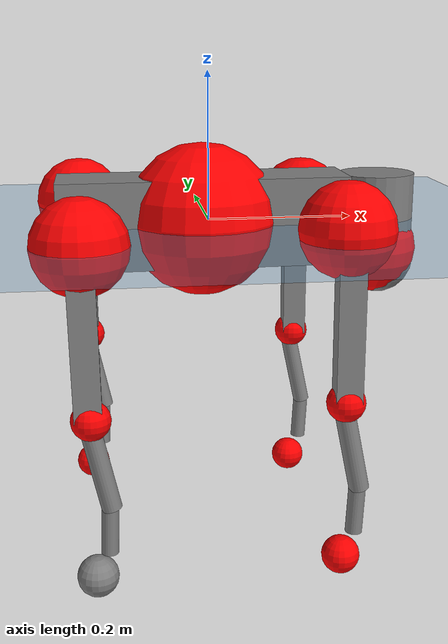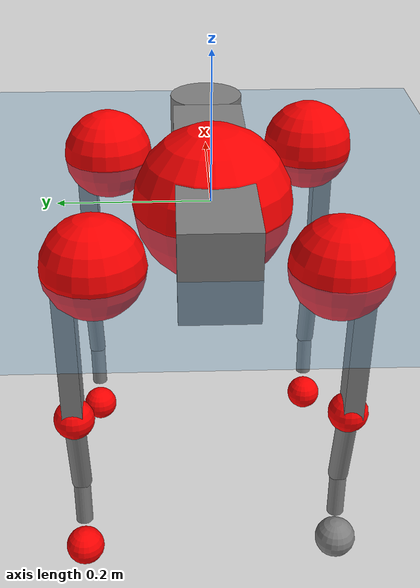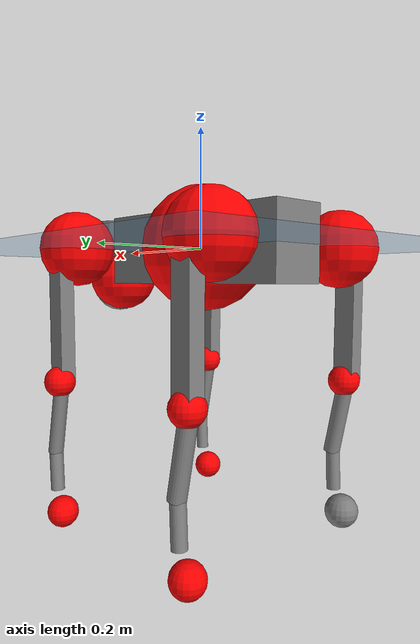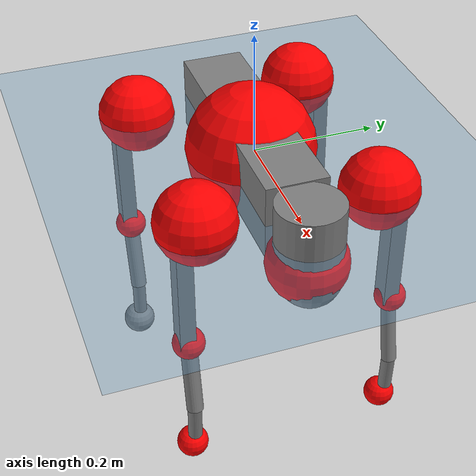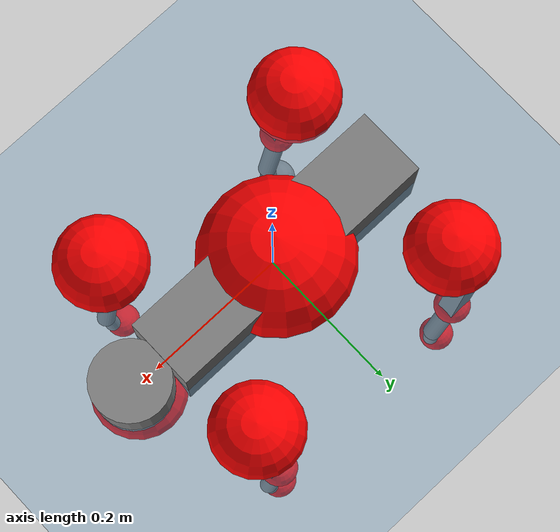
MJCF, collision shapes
<mujoco model="go2">
  <compiler angle="radian" assetdir="assets" balanceinertia="true" inertiafromgeom="false"/>

  <option timestep="0.005" density="1.2" viscosity="2e-05"/>

  <size nkey="1"/>

  <visual>
    <quality shadowsize="8192"/>
    <map shadowclip="0.5"/>
  </visual>

  <default>
    <default class="/">
      <geom contype="0" conaffinity="0" group="1" solref="-1000 -80"/>
      <site size="0.01 0.005 0.005" group="5"/>
      <general forcelimited="true" biastype="affine" gainprm="20" biasprm="0 -20 -0.5"/>
      <default class="go2">
        <joint armature="0.01" damping="0.01" frictionloss="0.2"/>
        <geom condim="1" margin="0.001"/>
        <default class="visual">
          <geom type="mesh" group="2"/>
        </default>
        <default class="collision">
          <geom group="3"/>
          <default class="foot">
            <geom size="0.022 0 0" condim="6" priority="1" friction="0.8 0.02 0.01" solimp="0.015 1 0.022"/>
          </default>
        </default>
        <default class="reward_collision_sphere">
          <geom group="5" rgba="1 0 0 1"/>
        </default>
      </default>
    </default>
  </default>

  <asset>
    <texture type="skybox" colorspace="auto" name="//unnamed_texture_0" builtin="gradient" rgb1="0.95 0.95 0.95" rgb2="0.95 0.95 0.95" width="100" height="600"/>
    <texture type="2d" colorspace="auto" name="texplane" builtin="checker" rgb1="0.345 0.575 0.748" rgb2="0.345 0.575 0.748" markrgb="1 1 1" width="512" height="512"/>
    <material name="MatPlane" class="/" texture="texplane" texuniform="true" texrepeat="2 2" specular="0.9"/>
    <material name="metal" class="/" rgba="0.9 0.95 0.95 1"/>
    <material name="black" class="/" rgba="0 0 0 1"/>
    <material name="white" class="/"/>
    <material name="gray" class="/" rgba="0.671705 0.692426 0.77427 1"/>
    <mesh name="base_0" class="/" file="base_0.obj"/>
    <mesh name="base_1" class="/" file="base_1.obj"/>
    <mesh name="base_2" class="/" file="base_2.obj"/>
    <mesh name="base_3" class="/" file="base_3.obj"/>
    <mesh name="base_4" class="/" file="base_4.obj"/>
    <mesh name="hip_0" class="/" file="hip_0.obj"/>
    <mesh name="hip_1" class="/" file="hip_1.obj"/>
    <mesh name="thigh_0" class="/" file="thigh_0.obj"/>
    <mesh name="thigh_1" class="/" file="thigh_1.obj"/>
    <mesh name="thigh_mirror_0" class="/" file="thigh_mirror_0.obj"/>
    <mesh name="thigh_mirror_1" class="/" file="thigh_mirror_1.obj"/>
    <mesh name="calf_0" class="/" file="calf_0.obj"/>
    <mesh name="calf_1" class="/" file="calf_1.obj"/>
    <mesh name="calf_mirror_0" class="/" file="calf_mirror_0.obj"/>
    <mesh name="calf_mirror_1" class="/" file="calf_mirror_1.obj"/>
    <mesh name="foot" class="/" file="foot.obj"/>
  </asset>

  <worldbody>
    <geom name="floor" class="/" size="100 100 0.125" type="plane" group="0" material="MatPlane"/>
    <light name="toplight_shadow" class="/" pos="0 0 5" dir="0.0990148 0.0990148 -0.990148" type="directional" ambient="0.04 0.04 0.04" diffuse="0.55 0.55 0.55" specular="0.12 0.12 0.12"/>
    <light name="toplight_fill" class="/" pos="0 0 5" dir="0.0990148 0.0990148 -0.990148" type="directional" castshadow="false" ambient="0.04 0.04 0.04" diffuse="0.3 0.3 0.3" specular="0.08 0.08 0.08"/>
    <body name="trunk" childclass="go2" pos="-0.00877471 -0.00208557 0.00150591" quat="0.999993 -0.00143977 -0.0033201 0.00066857">
      <inertial pos="0.0261767 -0.00109509 -0.00720936" quat="0.00679348 0.710287 -0.00300678 0.703873" mass="8.81126" diaginertia="0.0490275 0.281191 0.0311633"/>
      <joint name="//unnamed_joint_0" type="free" armature="0" damping="0" frictionloss="0"/>
      <geom name="//unnamed_geom_1" class="visual" material="black" mesh="base_0"/>
      <geom name="//unnamed_geom_2" class="visual" material="black" mesh="base_1"/>
      <geom name="//unnamed_geom_3" class="visual" material="black" mesh="base_2"/>
      <geom name="//unnamed_geom_4" class="visual" material="white" mesh="base_3"/>
      <geom name="//unnamed_geom_5" class="visual" material="gray" mesh="base_4"/>
      <geom name="trunk_1" class="collision" size="0.19725 0.0490242 0.0597728" type="box"/>
      <geom name="trunk_2" class="collision" size="0.0524323 0.047189" pos="0.244464 0 0.0105208" type="cylinder"/>
      <geom name="trunk_3" class="collision" size="0.0492863" pos="0.251327 0 -0.0631247"/>
      <geom name="//unnamed_geom_9" class="reward_collision_sphere" size="0.104865"/>
      <geom name="//unnamed_geom_10" class="reward_collision_sphere" size="0.0629187" pos="0.240176 0 -0.0473435"/>
      <site name="imu" pos="-0.0326172 -0.0116563 0.0098795" size="0.0104865"/>
      <camera name="track" pos="0 -2.47218 0" quat="0.707107 0.707107 0 0" mode="trackcom"/>
      <camera name="ego_camera" pos="0.267624 0 0.0473435" quat="-0.5 -0.5 0.5 0.5"/>
      <body name="FL_hip" pos="0.167988 0.0568209 -0.00104898" quat="1 -0.000616889 -0.000133198 -5.89907e-05">
        <inertial pos="-0.00296533 0.00690181 -0.00272483" quat="0.490608 0.49497 0.511746 0.502419" mass="0.810151" diaginertia="0.000371277 0.00170524 0.000617067"/>
        <joint name="FL_hip_joint" pos="0 0 0" axis="0.999052 0.0108601 0.042158" stiffness="0.0005274" range="-1.21362 1.00211" armature="0.0107551" damping="0.000136412" frictionloss="0.204557"/>
        <geom name="//unnamed_geom_11" class="visual" material="metal" mesh="hip_0"/>
        <geom name="//unnamed_geom_12" class="visual" material="gray" mesh="hip_1"/>
        <geom name="//unnamed_geom_13" class="collision" size="0.0482377 0.0209729" pos="0 0.098887 0" quat="0.707107 0.707107 0 0" type="cylinder"/>
        <geom name="//unnamed_geom_14" class="reward_collision_sphere" size="0.0629187" pos="0 0.0865261 0"/>
        <body name="FL_thigh" pos="-0.00172692 0.118908 -0.00264979" quat="0.999995 -0.00214366 0.00156208 -0.00144553">
          <inertial pos="-0.00750035 -0.0241717 -0.0272205" quat="0.829445 0.0845933 -0.0216948 0.551719" mass="1.36686" diaginertia="0.00285375 0.0182635 0.00105858"/>
          <joint name="FL_thigh_joint" pos="0 0 0" axis="-6.56131e-05 1 3.08675e-05" stiffness="0.0459053" range="-1.59556 3.50507" armature="0.0109889" damping="0.00302466" frictionloss="0.210249"/>
          <geom name="//unnamed_geom_15" class="visual" material="metal" mesh="thigh_0"/>
          <geom name="//unnamed_geom_16" class="visual" material="gray" mesh="thigh_1"/>
          <geom name="//unnamed_geom_17" class="collision" size="0.111681 0.0128459 0.017827" pos="0 0 -0.112046" quat="0.707107 0 0.707107 0" type="box"/>
          <body name="FL_calf" pos="-0.00129615 0.00722925 -0.221931" quat="0.999999 0.000836568 0.0011182 -0.000822767">
            <inertial pos="0.0110226 -0.000872529 -0.152511" quat="0.709676 -1.78563e-05 -0.00273082 0.704523" mass="0.274003" diaginertia="0.000634775 0.00358205 6.10578e-05"/>
            <joint name="FL_calf_joint" pos="0 0 0" axis="-0.000824948 0.999998 0.00154762" range="-2.57929 -0.793205" armature="0.00956227" damping="0.035585" frictionloss="0.18788"/>
            <geom name="//unnamed_geom_18" class="visual" material="gray" mesh="calf_0"/>
            <geom name="//unnamed_geom_19" class="visual" material="black" mesh="calf_1"/>
            <geom name="FL_calf0" class="collision" size="0.0125837 0.0629187" pos="0.00686216 0 -0.0631247" quat="0.994493 0 -0.104807 0" type="cylinder"/>
            <geom name="//unnamed_geom_21" class="collision" size="0.0115351 0.034081" pos="0.0171554 0 -0.155708" quat="0.999688 0 0.0249974 0" type="cylinder"/>
            <geom name="//unnamed_geom_22" class="visual" pos="0 0 -0.224093" quat="1 0 0 0" material="black" mesh="foot"/>
            <geom name="FL_foot" class="foot" size="0.0167083" pos="-0.00171554 0 -0.224093"/>
            <geom name="//unnamed_geom_24" class="reward_collision_sphere" size="0.0262161"/>
            <geom name="//unnamed_geom_25" class="reward_collision_sphere" size="0.0262161" pos="-0.00171554 0 -0.224093"/>
            <site name="FL_foot" class="foot" pos="-0.00171554 0 -0.224093" size="0.0104865"/>
          </body>
        </body>
      </body>
      <body name="FR_hip" pos="0.168785 -0.0573989 0.00761247" quat="0.999997 -0.0020407 -0.00146031 0.000505075">
        <inertial pos="-0.00663088 0.00413849 -0.000188545" quat="0.481285 0.494608 0.506826 0.516581" mass="0.794205" diaginertia="0.000448394 0.00177413 0.00066582"/>
        <joint name="FR_hip_joint" pos="0 0 0" axis="0.999948 0.00994353 0.00219289" range="-1.04853 1.03984" armature="0.0107724" damping="0.0229183" frictionloss="0.272826"/>
        <geom name="//unnamed_geom_26" class="visual" pos="0 1.60301e-09 6.87565e-08" quat="4.63268e-05 1 0 0" material="metal" mesh="hip_0"/>
        <geom name="//unnamed_geom_27" class="visual" pos="0 2.59868e-09 -1.70061e-07" quat="4.63268e-05 1 0 0" material="gray" mesh="hip_1"/>
        <geom name="//unnamed_geom_28" class="collision" size="0.0482377 0.0209729" pos="0 -0.098887 0" quat="0.707107 0.707107 0 0" type="cylinder"/>
        <geom name="//unnamed_geom_29" class="reward_collision_sphere" size="0.0629187" pos="0 -0.0865261 0"/>
        <body name="FR_thigh" pos="0.00030936 -0.109558 -0.0021653" quat="0.999999 0.00083349 3.46448e-05 -0.00101449">
          <inertial pos="-0.00562262 0.0324192 -0.03644" quat="0.543675 -0.0102551 0.0741642 0.83595" mass="1.30159" diaginertia="0.00274383 0.0171592 0.0010724"/>
          <joint name="FR_thigh_joint" pos="0 0 0" axis="0.0080429 -0.999905 -0.0112384" stiffness="0.0133107" range="-3.53516 1.46111" armature="0.0109114" damping="0.00755424" frictionloss="0.19778"/>
          <geom name="//unnamed_geom_30" class="visual" material="metal" mesh="thigh_mirror_0"/>
          <geom name="//unnamed_geom_31" class="visual" material="gray" mesh="thigh_mirror_1"/>
          <geom name="//unnamed_geom_32" class="collision" size="0.111681 0.0128459 0.017827" pos="0 0 -0.112046" quat="0.707107 0 0.707107 0" type="box"/>
          <body name="FR_calf" pos="-0.000232763 0.00523283 -0.224135" quat="1 -0.000183264 3.47452e-05 0.00039702">
            <inertial pos="0.00557204 0.00289342 -0.14749" quat="0.704389 0.0287905 -0.00363091 0.709221" mass="0.270662" diaginertia="0.000694507 0.00420395 7.19009e-05"/>
            <joint name="FR_calf_joint" pos="0 0 0" axis="-0.00774093 -0.999265 -0.0375394" stiffness="0.0338754" range="0.880446 2.6389" armature="0.0103785" damping="0" frictionloss="0.216873"/>
            <geom name="//unnamed_geom_33" class="visual" material="gray" mesh="calf_mirror_0"/>
            <geom name="//unnamed_geom_34" class="visual" material="black" mesh="calf_mirror_1"/>
            <geom name="FR_calf0" class="collision" size="0.0136324 0.0629187" pos="0.0085777 0 -0.0631247" quat="0.995004 0 -0.0998334 0" type="cylinder"/>
            <geom name="//unnamed_geom_36" class="collision" size="0.0115351 0.034081" pos="0.0171554 0 -0.155708" quat="0.999688 0 0.0249974 0" type="cylinder"/>
            <geom name="//unnamed_geom_37" class="visual" pos="0 0 -0.224093" quat="1 0 0 0" material="black" mesh="foot"/>
            <geom name="FR_foot" class="foot" size="0.0236295" pos="-0.00171554 0 -0.224093"/>
            <geom name="//unnamed_geom_39" class="reward_collision_sphere" size="0.0262161"/>
            <geom name="//unnamed_geom_40" class="reward_collision_sphere" size="0.0262161" pos="-0.00171554 0 -0.224093"/>
            <site name="FR_foot" class="foot" pos="-0.00171554 0 -0.224093" size="0.0104865"/>
          </body>
        </body>
      </body>
      <body name="RL_hip" pos="-0.169047 0.0582908 0.00534337" quat="0.999999 0.000399485 0.000814667 -0.000492493">
        <inertial pos="0.00407164 -0.00544686 0.00462134" quat="0.543856 0.48781 0.485713 0.479942" mass="0.720144" diaginertia="0.00042917 0.00171968 0.000574504"/>
        <joint name="RL_hip_joint" pos="0 0 0" axis="-0.99972 -0.0145506 -0.0186384" range="-1.08779 1.10317" armature="0.0131697" damping="0.00180125" frictionloss="0.139397"/>
        <geom name="//unnamed_geom_41" class="visual" pos="1.69274e-09 0 3.31815e-07" quat="4.63268e-05 0 1 0" material="metal" mesh="hip_0"/>
        <geom name="//unnamed_geom_42" class="visual" pos="2.74413e-09 0 2.94273e-07" quat="4.63268e-05 0 1 0" material="gray" mesh="hip_1"/>
        <geom name="//unnamed_geom_43" class="collision" size="0.0482377 0.0209729" pos="0 0.098887 0" quat="0.707107 0.707107 0 0" type="cylinder"/>
        <geom name="//unnamed_geom_44" class="reward_collision_sphere" size="0.0629187" pos="0 0.0865261 0"/>
        <body name="RL_thigh" pos="0.000363805 0.124462 -0.00662645" quat="0.999999 0.000658353 -0.000737287 -0.000297695">
          <inertial pos="-0.00324803 -0.0268518 -0.0324595" quat="0.829146 0.0849176 -0.0198437 0.552188" mass="1.20862" diaginertia="0.00285435 0.0174204 0.00109309"/>
          <joint name="RL_thigh_joint" pos="0 0 0" axis="0.0146011 0.999877 -0.00569715" range="-0.487285 4.5573" armature="0.00815122" damping="0.0171191" frictionloss="0.208137"/>
          <geom name="//unnamed_geom_45" class="visual" material="metal" mesh="thigh_0"/>
          <geom name="//unnamed_geom_46" class="visual" material="gray" mesh="thigh_1"/>
          <geom name="//unnamed_geom_47" class="collision" size="0.111681 0.0128459 0.017827" pos="0 0 -0.112046" quat="0.707107 0 0.707107 0" type="box"/>
          <body name="RL_calf" pos="0.000465896 -0.000320038 -0.21653" quat="1 0.000404718 -0.00046901 0.000455418">
            <inertial pos="0.00551473 -0.00910381 -0.14686" quat="0.707022 -0.00542968 0.00166907 0.707168" mass="0.277825" diaginertia="0.000713095 0.00433356 7.58731e-05"/>
            <joint name="RL_calf_joint" pos="0 0 0" axis="0.00953551 0.999874 0.0126561" stiffness="0.0450317" range="-2.70739 -0.863248" armature="0.00928674" damping="0.0264401" frictionloss="0.12518"/>
            <geom name="//unnamed_geom_48" class="visual" material="gray" mesh="calf_0"/>
            <geom name="//unnamed_geom_49" class="visual" material="black" mesh="calf_1"/>
            <geom name="RL_calf0" class="collision" size="0.0136324 0.0629187" pos="0.0085777 0 -0.0631247" quat="0.995004 0 -0.0998334 0" type="cylinder"/>
            <geom name="//unnamed_geom_51" class="collision" size="0.0115351 0.034081" pos="0.0171554 0 -0.155708" quat="0.999688 0 0.0249974 0" type="cylinder"/>
            <geom name="//unnamed_geom_52" class="visual" pos="0 0 -0.224093" quat="1 0 0 0" material="black" mesh="foot"/>
            <geom name="RL_foot" class="foot" size="0.0246952" pos="-0.00171554 0 -0.224093"/>
            <geom name="//unnamed_geom_54" class="reward_collision_sphere" size="0.0262161"/>
            <geom name="//unnamed_geom_55" class="reward_collision_sphere" size="0.0262161" pos="-0.00171554 0 -0.224093"/>
            <site name="RL_foot" class="foot" pos="-0.00171554 0 -0.224093" size="0.0104865"/>
          </body>
        </body>
      </body>
      <body name="RR_hip" pos="-0.165816 -0.0554675 -0.00300383" quat="0.999992 0.00304599 -0.0023723 -0.000487338">
        <inertial pos="-0.00351308 -0.00701964 0.00789524" quat="0.514667 0.49762 0.49477 0.49264" mass="0.772847" diaginertia="0.000402428 0.00167506 0.000598646"/>
        <joint name="RR_hip_joint" pos="0 0 0" axis="-0.999093 0.0384235 -0.0183586" range="-1.04863 1.08222" armature="0.0113553" damping="0" frictionloss="0.226975"/>
        <geom name="//unnamed_geom_56" class="visual" pos="-1.67964e-09 1.60301e-09 2.63059e-07" quat="2.14617e-09 4.63268e-05 4.63268e-05 -1" material="metal" mesh="hip_0"/>
        <geom name="//unnamed_geom_57" class="visual" pos="-2.77652e-09 2.59868e-09 4.64334e-07" quat="2.14617e-09 4.63268e-05 4.63268e-05 -1" material="gray" mesh="hip_1"/>
        <geom name="//unnamed_geom_58" class="collision" size="0.0482377 0.0209729" pos="0 -0.098887 0" quat="0.707107 0.707107 0 0" type="cylinder"/>
        <geom name="//unnamed_geom_59" class="reward_collision_sphere" size="0.0629187" pos="0 -0.0865261 0"/>
        <body name="RR_thigh" pos="-0.000530514 -0.117048 0.00822531" quat="1 -0.000114589 3.82906e-05 0.000378296">
          <inertial pos="-0.00544171 0.027948 -0.0347293" quat="0.548951 -0.0220446 0.0850506 0.831224" mass="1.42738" diaginertia="0.00269353 0.0160785 0.0011269"/>
          <joint name="RR_thigh_joint" pos="0 0 0" axis="-0.00582038 -0.999941 -0.00919129" range="-4.55481 0.400149" armature="0.00932703" damping="0.0130016" frictionloss="0.22681"/>
          <geom name="//unnamed_geom_60" class="visual" material="metal" mesh="thigh_mirror_0"/>
          <geom name="//unnamed_geom_61" class="visual" material="gray" mesh="thigh_mirror_1"/>
          <geom name="//unnamed_geom_62" class="collision" size="0.111681 0.0128459 0.017827" pos="0 0 -0.112046" quat="0.707107 0 0.707107 0" type="box"/>
          <body name="RR_calf" pos="0.00303648 0.00314392 -0.225876" quat="1 -0.000702545 -0.000570789 -0.000280045">
            <inertial pos="0.00980574 0.00294517 -0.14965" quat="0.699859 0.00554465 0.00383557 0.714249" mass="0.272758" diaginertia="0.00069292 0.00432495 6.41118e-05"/>
            <joint name="RR_calf_joint" pos="0 0 0" axis="-0.0027793 -0.999383 0.0350232" range="0.84421 2.72158" armature="0.0101529" damping="0" frictionloss="0.20042"/>
            <geom name="//unnamed_geom_63" class="visual" material="gray" mesh="calf_mirror_0"/>
            <geom name="//unnamed_geom_64" class="visual" material="black" mesh="calf_mirror_1"/>
            <geom name="RR_calf0" class="collision" size="0.0136324 0.0629187" pos="0.0085777 0 -0.0631247" quat="0.995004 0 -0.0998334 0" type="cylinder"/>
            <geom name="//unnamed_geom_66" class="collision" size="0.0115351 0.034081" pos="0.0171554 0 -0.155708" quat="0.999688 0 0.0249974 0" type="cylinder"/>
            <geom name="//unnamed_geom_67" class="visual" pos="0 0 -0.224093" quat="1 0 0 0" material="black" mesh="foot"/>
            <geom name="RR_foot" class="foot" size="0.0280443" pos="-0.00171554 0 -0.224093"/>
            <geom name="//unnamed_geom_69" class="reward_collision_sphere" size="0.0262161"/>
            <geom name="//unnamed_geom_70" class="reward_collision_sphere" size="0.0262161" pos="-0.00171554 0 -0.224093"/>
            <site name="RR_foot" class="foot" pos="-0.00171554 0 -0.224093" size="0.0104865"/>
          </body>
        </body>
      </body>
    </body>
  </worldbody>

  <contact>
    <pair class="/" geom1="floor" geom2="FL_foot" name="//unnamed_contact_0"/>
    <pair class="/" geom1="floor" geom2="FR_foot" name="//unnamed_contact_1"/>
    <pair class="/" geom1="floor" geom2="RL_foot" name="//unnamed_contact_2"/>
    <pair class="/" geom1="floor" geom2="RR_foot" name="//unnamed_contact_3"/>
  </contact>

  <actuator>
    <general name="FL_hip" class="/" joint="FL_hip_joint" forcerange="-25.5513 25.5513" gainprm="19.5885" biasprm="0 -19.5885 -0.578152"/>
    <general name="FL_thigh" class="/" joint="FL_thigh_joint" forcerange="-26.8866 26.8866" gainprm="19.5885" biasprm="0 -19.5885 -0.578152"/>
    <general name="FL_calf" class="/" joint="FL_calf_joint" forcerange="-43.6529 43.6529" gainprm="19.5885" biasprm="0 -19.5885 -0.578152"/>
    <general name="FR_hip" class="/" joint="FR_hip_joint" forcerange="-23.3521 23.3521" gainprm="19.5885" biasprm="0 -19.5885 -0.578152"/>
    <general name="FR_thigh" class="/" joint="FR_thigh_joint" forcerange="-22.8959 22.8959" gainprm="19.5885" biasprm="0 -19.5885 -0.578152"/>
    <general name="FR_calf" class="/" joint="FR_calf_joint" forcerange="-44.8871 44.8871" gainprm="19.5885" biasprm="0 -19.5885 -0.578152"/>
    <general name="RL_hip" class="/" joint="RL_hip_joint" forcerange="-17.5795 17.5795" gainprm="19.5885" biasprm="0 -19.5885 -0.578152"/>
    <general name="RL_thigh" class="/" joint="RL_thigh_joint" forcerange="-26.5709 26.5709" gainprm="19.5885" biasprm="0 -19.5885 -0.578152"/>
    <general name="RL_calf" class="/" joint="RL_calf_joint" forcerange="-61.4925 61.4925" gainprm="19.5885" biasprm="0 -19.5885 -0.578152"/>
    <general name="RR_hip" class="/" joint="RR_hip_joint" forcerange="-28.3474 28.3474" gainprm="19.5885" biasprm="0 -19.5885 -0.578152"/>
    <general name="RR_thigh" class="/" joint="RR_thigh_joint" forcerange="-17.9948 17.9948" gainprm="19.5885" biasprm="0 -19.5885 -0.578152"/>
    <general name="RR_calf" class="/" joint="RR_calf_joint" forcerange="-52.2665 52.2665" gainprm="19.5885" biasprm="0 -19.5885 -0.578152"/>
  </actuator>

  <sensor>
    <gyro site="imu" name="imu_angular_velocity"/>
    <velocimeter site="imu" name="imu_linear_velocity"/>
    <framelinvel objtype="site" objname="FL_foot" name="FL_foot_global_linear_velocity"/>
    <framelinvel objtype="site" objname="FR_foot" name="FR_foot_global_linear_velocity"/>
    <framelinvel objtype="site" objname="RL_foot" name="RL_foot_global_linear_velocity"/>
    <framelinvel objtype="site" objname="RR_foot" name="RR_foot_global_linear_velocity"/>
  </sensor>

  <keyframe>
    <key name="home" qpos="0 0 0.325 1 0 0 0 0.1 0.8 -1.5 -0.1 -0.8 1.5 -0.1 0.8 -1.5 0.1 -0.8 1.5"/>
  </keyframe>
</mujoco>
